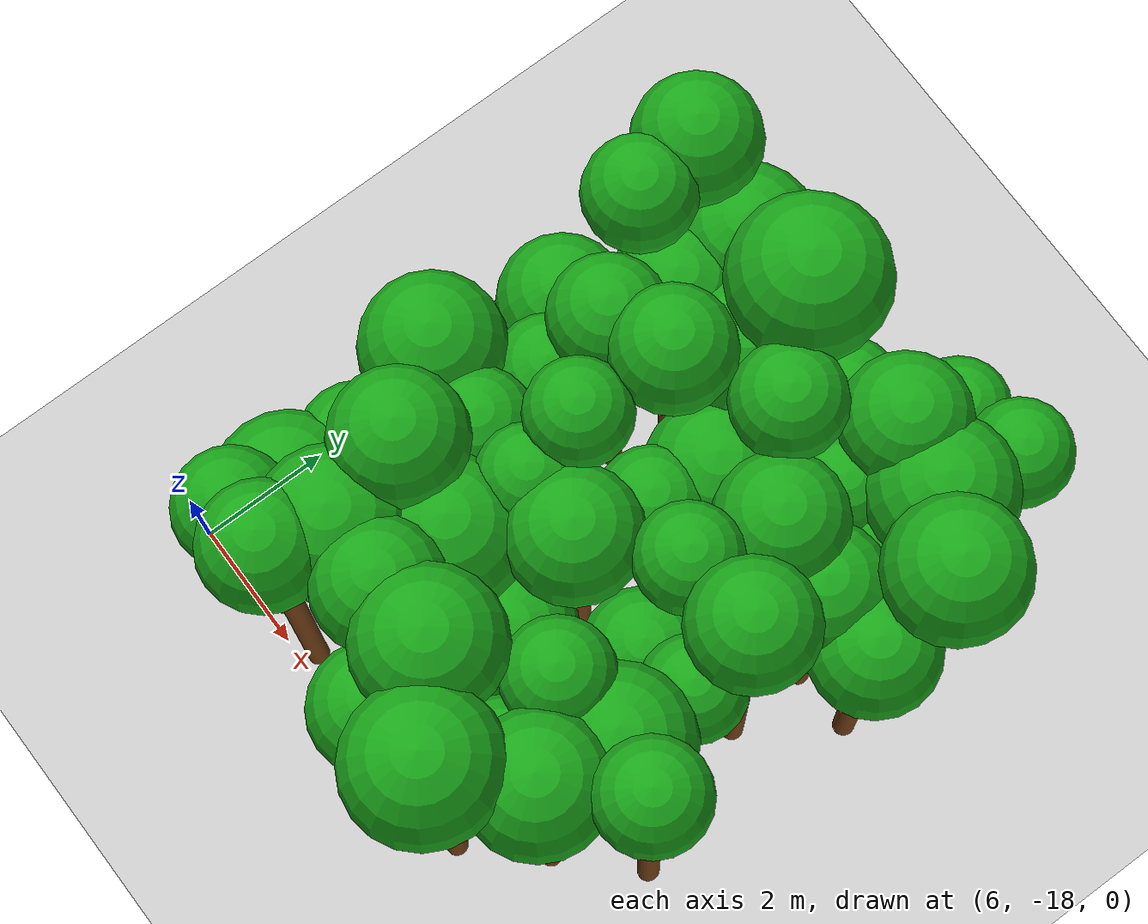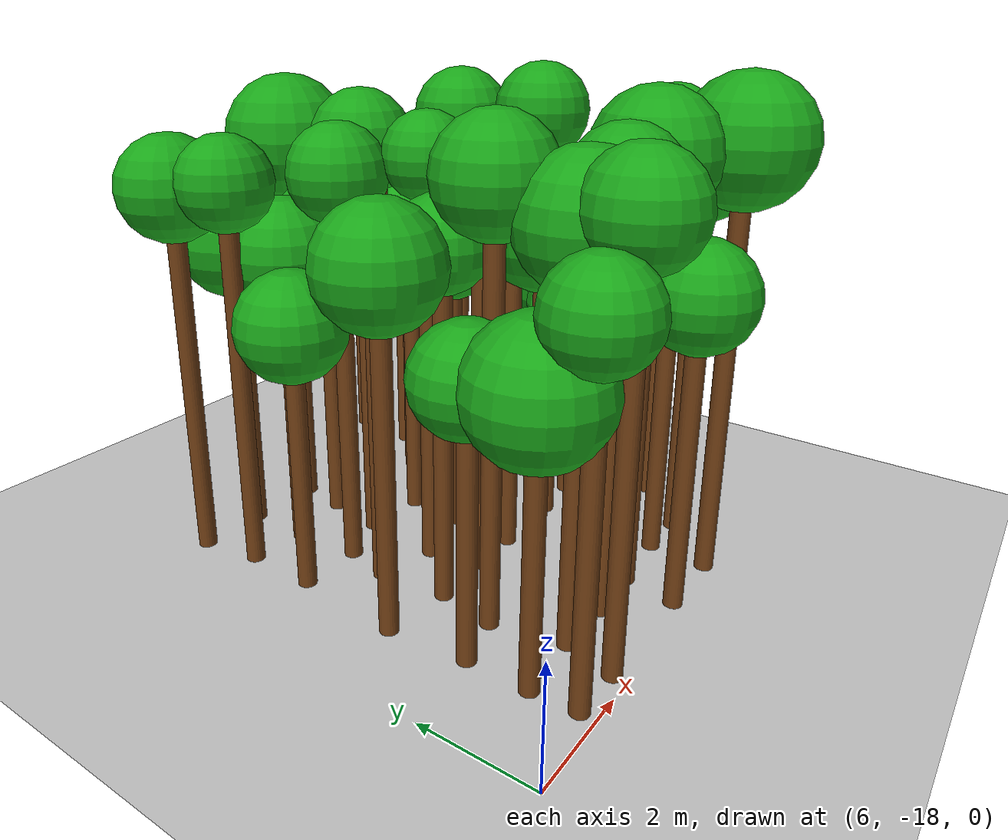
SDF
<sdf version="1.6">
 <world name="forest_world">
  <include><uri>model://sun</uri></include>
  <include><uri>model://ground_plane</uri></include>
  <model name="tree_1858_trunk">
   <static>true</static>
   <pose>7.50 -17.72 2.68 0 0 0</pose>
   <link name="link">
    <collision name="collision">
     <geometry><cylinder><radius>0.16</radius><length>5.35</length></cylinder></geometry>
    </collision>
    <visual name="visual">
     <geometry><cylinder><radius>0.16</radius><length>5.35</length></cylinder></geometry>
     <material><ambient>0.35 0.20 0.05 1</ambient><diffuse>0.45 0.25 0.08 1</diffuse></material>
    </visual>
   </link>
  </model>
  <model name="tree_1858_leaf">
   <static>true</static>
   <pose>7.50 -17.72 5.84 0 0 0</pose>
   <link name="link">
    <collision name="collision"><geometry><sphere><radius>0.81</radius></sphere></geometry></collision>
    <visual name="visual">
     <geometry><sphere><radius>0.81</radius></sphere></geometry>
     <material><ambient>0.05 0.45 0.05 1</ambient><diffuse>0.10 0.65 0.10 1</diffuse></material>
    </visual>
   </link>
  </model>
  <model name="tree_1859_trunk">
   <static>true</static>
   <pose>7.45 -16.93 2.02 0 0 0</pose>
   <link name="link">
    <collision name="collision">
     <geometry><cylinder><radius>0.16</radius><length>4.03</length></cylinder></geometry>
    </collision>
    <visual name="visual">
     <geometry><cylinder><radius>0.16</radius><length>4.03</length></cylinder></geometry>
     <material><ambient>0.35 0.20 0.05 1</ambient><diffuse>0.45 0.25 0.08 1</diffuse></material>
    </visual>
   </link>
  </model>
  <model name="tree_1859_leaf">
   <static>true</static>
   <pose>7.45 -16.93 4.68 0 0 0</pose>
   <link name="link">
    <collision name="collision"><geometry><sphere><radius>1.08</radius></sphere></geometry></collision>
    <visual name="visual">
     <geometry><sphere><radius>1.08</radius></sphere></geometry>
     <material><ambient>0.05 0.45 0.05 1</ambient><diffuse>0.10 0.65 0.10 1</diffuse></material>
    </visual>
   </link>
  </model>
  <model name="tree_1860_trunk">
   <static>true</static>
   <pose>7.45 -15.83 2.03 0 0 0</pose>
   <link name="link">
    <collision name="collision">
     <geometry><cylinder><radius>0.16</radius><length>4.06</length></cylinder></geometry>
    </collision>
    <visual name="visual">
     <geometry><cylinder><radius>0.16</radius><length>4.06</length></cylinder></geometry>
     <material><ambient>0.35 0.20 0.05 1</ambient><diffuse>0.45 0.25 0.08 1</diffuse></material>
    </visual>
   </link>
  </model>
  <model name="tree_1860_leaf">
   <static>true</static>
   <pose>7.45 -15.83 4.57 0 0 0</pose>
   <link name="link">
    <collision name="collision"><geometry><sphere><radius>0.86</radius></sphere></geometry></collision>
    <visual name="visual">
     <geometry><sphere><radius>0.86</radius></sphere></geometry>
     <material><ambient>0.05 0.45 0.05 1</ambient><diffuse>0.10 0.65 0.10 1</diffuse></material>
    </visual>
   </link>
  </model>
  <model name="tree_1861_trunk">
   <static>true</static>
   <pose>7.32 -14.43 2.67 0 0 0</pose>
   <link name="link">
    <collision name="collision">
     <geometry><cylinder><radius>0.16</radius><length>5.34</length></cylinder></geometry>
    </collision>
    <visual name="visual">
     <geometry><cylinder><radius>0.16</radius><length>5.34</length></cylinder></geometry>
     <material><ambient>0.35 0.20 0.05 1</ambient><diffuse>0.45 0.25 0.08 1</diffuse></material>
    </visual>
   </link>
  </model>
  <model name="tree_1861_leaf">
   <static>true</static>
   <pose>7.32 -14.43 5.93 0 0 0</pose>
   <link name="link">
    <collision name="collision"><geometry><sphere><radius>0.99</radius></sphere></geometry></collision>
    <visual name="visual">
     <geometry><sphere><radius>0.99</radius></sphere></geometry>
     <material><ambient>0.05 0.45 0.05 1</ambient><diffuse>0.10 0.65 0.10 1</diffuse></material>
    </visual>
   </link>
  </model>
  <model name="tree_1863_trunk">
   <static>true</static>
   <pose>7.48 -12.49 2.04 0 0 0</pose>
   <link name="link">
    <collision name="collision">
     <geometry><cylinder><radius>0.16</radius><length>4.09</length></cylinder></geometry>
    </collision>
    <visual name="visual">
     <geometry><cylinder><radius>0.16</radius><length>4.09</length></cylinder></geometry>
     <material><ambient>0.35 0.20 0.05 1</ambient><diffuse>0.45 0.25 0.08 1</diffuse></material>
    </visual>
   </link>
  </model>
  <model name="tree_1863_leaf">
   <static>true</static>
   <pose>7.48 -12.49 4.63 0 0 0</pose>
   <link name="link">
    <collision name="collision"><geometry><sphere><radius>0.91</radius></sphere></geometry></collision>
    <visual name="visual">
     <geometry><sphere><radius>0.91</radius></sphere></geometry>
     <material><ambient>0.05 0.45 0.05 1</ambient><diffuse>0.10 0.65 0.10 1</diffuse></material>
    </visual>
   </link>
  </model>
  <model name="tree_1864_trunk">
   <static>true</static>
   <pose>7.48 -11.21 3.11 0 0 0</pose>
   <link name="link">
    <collision name="collision">
     <geometry><cylinder><radius>0.16</radius><length>6.23</length></cylinder></geometry>
    </collision>
    <visual name="visual">
     <geometry><cylinder><radius>0.16</radius><length>6.23</length></cylinder></geometry>
     <material><ambient>0.35 0.20 0.05 1</ambient><diffuse>0.45 0.25 0.08 1</diffuse></material>
    </visual>
   </link>
  </model>
  <model name="tree_1864_leaf">
   <static>true</static>
   <pose>7.48 -11.21 6.70 0 0 0</pose>
   <link name="link">
    <collision name="collision"><geometry><sphere><radius>0.78</radius></sphere></geometry></collision>
    <visual name="visual">
     <geometry><sphere><radius>0.78</radius></sphere></geometry>
     <material><ambient>0.05 0.45 0.05 1</ambient><diffuse>0.10 0.65 0.10 1</diffuse></material>
    </visual>
   </link>
  </model>
  <model name="tree_1865_trunk">
   <static>true</static>
   <pose>7.29 -10.14 3.00 0 0 0</pose>
   <link name="link">
    <collision name="collision">
     <geometry><cylinder><radius>0.16</radius><length>6.01</length></cylinder></geometry>
    </collision>
    <visual name="visual">
     <geometry><cylinder><radius>0.16</radius><length>6.01</length></cylinder></geometry>
     <material><ambient>0.35 0.20 0.05 1</ambient><diffuse>0.45 0.25 0.08 1</diffuse></material>
    </visual>
   </link>
  </model>
  <model name="tree_1865_leaf">
   <static>true</static>
   <pose>7.29 -10.14 6.54 0 0 0</pose>
   <link name="link">
    <collision name="collision"><geometry><sphere><radius>0.89</radius></sphere></geometry></collision>
    <visual name="visual">
     <geometry><sphere><radius>0.89</radius></sphere></geometry>
     <material><ambient>0.05 0.45 0.05 1</ambient><diffuse>0.10 0.65 0.10 1</diffuse></material>
    </visual>
   </link>
  </model>
  <model name="tree_1913_trunk">
   <static>true</static>
   <pose>8.43 -17.75 3.21 0 0 0</pose>
   <link name="link">
    <collision name="collision">
     <geometry><cylinder><radius>0.16</radius><length>6.42</length></cylinder></geometry>
    </collision>
    <visual name="visual">
     <geometry><cylinder><radius>0.16</radius><length>6.42</length></cylinder></geometry>
     <material><ambient>0.35 0.20 0.05 1</ambient><diffuse>0.45 0.25 0.08 1</diffuse></material>
    </visual>
   </link>
  </model>
  <model name="tree_1913_leaf">
   <static>true</static>
   <pose>8.43 -17.75 6.94 0 0 0</pose>
   <link name="link">
    <collision name="collision"><geometry><sphere><radius>0.86</radius></sphere></geometry></collision>
    <visual name="visual">
     <geometry><sphere><radius>0.86</radius></sphere></geometry>
     <material><ambient>0.05 0.45 0.05 1</ambient><diffuse>0.10 0.65 0.10 1</diffuse></material>
    </visual>
   </link>
  </model>
  <model name="tree_1914_trunk">
   <static>true</static>
   <pose>8.65 -16.87 3.01 0 0 0</pose>
   <link name="link">
    <collision name="collision">
     <geometry><cylinder><radius>0.16</radius><length>6.02</length></cylinder></geometry>
    </collision>
    <visual name="visual">
     <geometry><cylinder><radius>0.16</radius><length>6.02</length></cylinder></geometry>
     <material><ambient>0.35 0.20 0.05 1</ambient><diffuse>0.45 0.25 0.08 1</diffuse></material>
    </visual>
   </link>
  </model>
  <model name="tree_1914_leaf">
   <static>true</static>
   <pose>8.65 -16.87 6.64 0 0 0</pose>
   <link name="link">
    <collision name="collision"><geometry><sphere><radius>1.03</radius></sphere></geometry></collision>
    <visual name="visual">
     <geometry><sphere><radius>1.03</radius></sphere></geometry>
     <material><ambient>0.05 0.45 0.05 1</ambient><diffuse>0.10 0.65 0.10 1</diffuse></material>
    </visual>
   </link>
  </model>
  <model name="tree_1915_trunk">
   <static>true</static>
   <pose>8.37 -15.62 3.30 0 0 0</pose>
   <link name="link">
    <collision name="collision">
     <geometry><cylinder><radius>0.16</radius><length>6.60</length></cylinder></geometry>
    </collision>
    <visual name="visual">
     <geometry><cylinder><radius>0.16</radius><length>6.60</length></cylinder></geometry>
     <material><ambient>0.35 0.20 0.05 1</ambient><diffuse>0.45 0.25 0.08 1</diffuse></material>
    </visual>
   </link>
  </model>
  <model name="tree_1915_leaf">
   <static>true</static>
   <pose>8.37 -15.62 7.15 0 0 0</pose>
   <link name="link">
    <collision name="collision"><geometry><sphere><radius>0.92</radius></sphere></geometry></collision>
    <visual name="visual">
     <geometry><sphere><radius>0.92</radius></sphere></geometry>
     <material><ambient>0.05 0.45 0.05 1</ambient><diffuse>0.10 0.65 0.10 1</diffuse></material>
    </visual>
   </link>
  </model>
  <model name="tree_1916_trunk">
   <static>true</static>
   <pose>8.55 -14.59 2.78 0 0 0</pose>
   <link name="link">
    <collision name="collision">
     <geometry><cylinder><radius>0.16</radius><length>5.57</length></cylinder></geometry>
    </collision>
    <visual name="visual">
     <geometry><cylinder><radius>0.16</radius><length>5.57</length></cylinder></geometry>
     <material><ambient>0.35 0.20 0.05 1</ambient><diffuse>0.45 0.25 0.08 1</diffuse></material>
    </visual>
   </link>
  </model>
  <model name="tree_1916_leaf">
   <static>true</static>
   <pose>8.55 -14.59 6.03 0 0 0</pose>
   <link name="link">
    <collision name="collision"><geometry><sphere><radius>0.77</radius></sphere></geometry></collision>
    <visual name="visual">
     <geometry><sphere><radius>0.77</radius></sphere></geometry>
     <material><ambient>0.05 0.45 0.05 1</ambient><diffuse>0.10 0.65 0.10 1</diffuse></material>
    </visual>
   </link>
  </model>
  <model name="tree_1917_trunk">
   <static>true</static>
   <pose>8.41 -13.37 2.50 0 0 0</pose>
   <link name="link">
    <collision name="collision">
     <geometry><cylinder><radius>0.16</radius><length>5.01</length></cylinder></geometry>
    </collision>
    <visual name="visual">
     <geometry><cylinder><radius>0.16</radius><length>5.01</length></cylinder></geometry>
     <material><ambient>0.35 0.20 0.05 1</ambient><diffuse>0.45 0.25 0.08 1</diffuse></material>
    </visual>
   </link>
  </model>
  <model name="tree_1917_leaf">
   <static>true</static>
   <pose>8.41 -13.37 5.49 0 0 0</pose>
   <link name="link">
    <collision name="collision"><geometry><sphere><radius>0.80</radius></sphere></geometry></collision>
    <visual name="visual">
     <geometry><sphere><radius>0.80</radius></sphere></geometry>
     <material><ambient>0.05 0.45 0.05 1</ambient><diffuse>0.10 0.65 0.10 1</diffuse></material>
    </visual>
   </link>
  </model>
  <model name="tree_1918_trunk">
   <static>true</static>
   <pose>8.59 -12.54 3.18 0 0 0</pose>
   <link name="link">
    <collision name="collision">
     <geometry><cylinder><radius>0.16</radius><length>6.35</length></cylinder></geometry>
    </collision>
    <visual name="visual">
     <geometry><cylinder><radius>0.16</radius><length>6.35</length></cylinder></geometry>
     <material><ambient>0.35 0.20 0.05 1</ambient><diffuse>0.45 0.25 0.08 1</diffuse></material>
    </visual>
   </link>
  </model>
  <model name="tree_1918_leaf">
   <static>true</static>
   <pose>8.59 -12.54 6.84 0 0 0</pose>
   <link name="link">
    <collision name="collision"><geometry><sphere><radius>0.81</radius></sphere></geometry></collision>
    <visual name="visual">
     <geometry><sphere><radius>0.81</radius></sphere></geometry>
     <material><ambient>0.05 0.45 0.05 1</ambient><diffuse>0.10 0.65 0.10 1</diffuse></material>
    </visual>
   </link>
  </model>
  <model name="tree_1919_trunk">
   <static>true</static>
   <pose>8.48 -11.36 2.43 0 0 0</pose>
   <link name="link">
    <collision name="collision">
     <geometry><cylinder><radius>0.16</radius><length>4.87</length></cylinder></geometry>
    </collision>
    <visual name="visual">
     <geometry><cylinder><radius>0.16</radius><length>4.87</length></cylinder></geometry>
     <material><ambient>0.35 0.20 0.05 1</ambient><diffuse>0.45 0.25 0.08 1</diffuse></material>
    </visual>
   </link>
  </model>
  <model name="tree_1919_leaf">
   <static>true</static>
   <pose>8.48 -11.36 5.43 0 0 0</pose>
   <link name="link">
    <collision name="collision"><geometry><sphere><radius>0.94</radius></sphere></geometry></collision>
    <visual name="visual">
     <geometry><sphere><radius>0.94</radius></sphere></geometry>
     <material><ambient>0.05 0.45 0.05 1</ambient><diffuse>0.10 0.65 0.10 1</diffuse></material>
    </visual>
   </link>
  </model>
  <model name="tree_1920_trunk">
   <static>true</static>
   <pose>8.46 -10.20 2.43 0 0 0</pose>
   <link name="link">
    <collision name="collision">
     <geometry><cylinder><radius>0.16</radius><length>4.86</length></cylinder></geometry>
    </collision>
    <visual name="visual">
     <geometry><cylinder><radius>0.16</radius><length>4.86</length></cylinder></geometry>
     <material><ambient>0.35 0.20 0.05 1</ambient><diffuse>0.45 0.25 0.08 1</diffuse></material>
    </visual>
   </link>
  </model>
  <model name="tree_1920_leaf">
   <static>true</static>
   <pose>8.46 -10.20 5.48 0 0 0</pose>
   <link name="link">
    <collision name="collision"><geometry><sphere><radius>1.02</radius></sphere></geometry></collision>
    <visual name="visual">
     <geometry><sphere><radius>1.02</radius></sphere></geometry>
     <material><ambient>0.05 0.45 0.05 1</ambient><diffuse>0.10 0.65 0.10 1</diffuse></material>
    </visual>
   </link>
  </model>
  <model name="tree_1969_trunk">
   <static>true</static>
   <pose>9.70 -16.89 3.21 0 0 0</pose>
   <link name="link">
    <collision name="collision">
     <geometry><cylinder><radius>0.16</radius><length>6.43</length></cylinder></geometry>
    </collision>
    <visual name="visual">
     <geometry><cylinder><radius>0.16</radius><length>6.43</length></cylinder></geometry>
     <material><ambient>0.35 0.20 0.05 1</ambient><diffuse>0.45 0.25 0.08 1</diffuse></material>
    </visual>
   </link>
  </model>
  <model name="tree_1969_leaf">
   <static>true</static>
   <pose>9.70 -16.89 6.96 0 0 0</pose>
   <link name="link">
    <collision name="collision"><geometry><sphere><radius>0.89</radius></sphere></geometry></collision>
    <visual name="visual">
     <geometry><sphere><radius>0.89</radius></sphere></geometry>
     <material><ambient>0.05 0.45 0.05 1</ambient><diffuse>0.10 0.65 0.10 1</diffuse></material>
    </visual>
   </link>
  </model>
  <model name="tree_1970_trunk">
   <static>true</static>
   <pose>9.54 -15.74 2.85 0 0 0</pose>
   <link name="link">
    <collision name="collision">
     <geometry><cylinder><radius>0.16</radius><length>5.69</length></cylinder></geometry>
    </collision>
    <visual name="visual">
     <geometry><cylinder><radius>0.16</radius><length>5.69</length></cylinder></geometry>
     <material><ambient>0.35 0.20 0.05 1</ambient><diffuse>0.45 0.25 0.08 1</diffuse></material>
    </visual>
   </link>
  </model>
  <model name="tree_1970_leaf">
   <static>true</static>
   <pose>9.54 -15.74 6.30 0 0 0</pose>
   <link name="link">
    <collision name="collision"><geometry><sphere><radius>1.02</radius></sphere></geometry></collision>
    <visual name="visual">
     <geometry><sphere><radius>1.02</radius></sphere></geometry>
     <material><ambient>0.05 0.45 0.05 1</ambient><diffuse>0.10 0.65 0.10 1</diffuse></material>
    </visual>
   </link>
  </model>
  <model name="tree_1971_trunk">
   <static>true</static>
   <pose>9.62 -14.56 3.09 0 0 0</pose>
   <link name="link">
    <collision name="collision">
     <geometry><cylinder><radius>0.16</radius><length>6.17</length></cylinder></geometry>
    </collision>
    <visual name="visual">
     <geometry><cylinder><radius>0.16</radius><length>6.17</length></cylinder></geometry>
     <material><ambient>0.35 0.20 0.05 1</ambient><diffuse>0.45 0.25 0.08 1</diffuse></material>
    </visual>
   </link>
  </model>
  <model name="tree_1971_leaf">
   <static>true</static>
   <pose>9.62 -14.56 6.59 0 0 0</pose>
   <link name="link">
    <collision name="collision"><geometry><sphere><radius>0.71</radius></sphere></geometry></collision>
    <visual name="visual">
     <geometry><sphere><radius>0.71</radius></sphere></geometry>
     <material><ambient>0.05 0.45 0.05 1</ambient><diffuse>0.10 0.65 0.10 1</diffuse></material>
    </visual>
   </link>
  </model>
  <model name="tree_1972_trunk">
   <static>true</static>
   <pose>9.44 -13.64 3.33 0 0 0</pose>
   <link name="link">
    <collision name="collision">
     <geometry><cylinder><radius>0.16</radius><length>6.67</length></cylinder></geometry>
    </collision>
    <visual name="visual">
     <geometry><cylinder><radius>0.16</radius><length>6.67</length></cylinder></geometry>
     <material><ambient>0.35 0.20 0.05 1</ambient><diffuse>0.45 0.25 0.08 1</diffuse></material>
    </visual>
   </link>
  </model>
  <model name="tree_1972_leaf">
   <static>true</static>
   <pose>9.44 -13.64 7.10 0 0 0</pose>
   <link name="link">
    <collision name="collision"><geometry><sphere><radius>0.72</radius></sphere></geometry></collision>
    <visual name="visual">
     <geometry><sphere><radius>0.72</radius></sphere></geometry>
     <material><ambient>0.05 0.45 0.05 1</ambient><diffuse>0.10 0.65 0.10 1</diffuse></material>
    </visual>
   </link>
  </model>
  <model name="tree_1973_trunk">
   <static>true</static>
   <pose>9.52 -12.23 3.37 0 0 0</pose>
   <link name="link">
    <collision name="collision">
     <geometry><cylinder><radius>0.16</radius><length>6.73</length></cylinder></geometry>
    </collision>
    <visual name="visual">
     <geometry><cylinder><radius>0.16</radius><length>6.73</length></cylinder></geometry>
     <material><ambient>0.35 0.20 0.05 1</ambient><diffuse>0.45 0.25 0.08 1</diffuse></material>
    </visual>
   </link>
  </model>
  <model name="tree_1973_leaf">
   <static>true</static>
   <pose>9.52 -12.23 7.23 0 0 0</pose>
   <link name="link">
    <collision name="collision"><geometry><sphere><radius>0.84</radius></sphere></geometry></collision>
    <visual name="visual">
     <geometry><sphere><radius>0.84</radius></sphere></geometry>
     <material><ambient>0.05 0.45 0.05 1</ambient><diffuse>0.10 0.65 0.10 1</diffuse></material>
    </visual>
   </link>
  </model>
  <model name="tree_1974_trunk">
   <static>true</static>
   <pose>9.67 -11.16 2.52 0 0 0</pose>
   <link name="link">
    <collision name="collision">
     <geometry><cylinder><radius>0.16</radius><length>5.05</length></cylinder></geometry>
    </collision>
    <visual name="visual">
     <geometry><cylinder><radius>0.16</radius><length>5.05</length></cylinder></geometry>
     <material><ambient>0.35 0.20 0.05 1</ambient><diffuse>0.45 0.25 0.08 1</diffuse></material>
    </visual>
   </link>
  </model>
  <model name="tree_1974_leaf">
   <static>true</static>
   <pose>9.67 -11.16 5.60 0 0 0</pose>
   <link name="link">
    <collision name="collision"><geometry><sphere><radius>0.92</radius></sphere></geometry></collision>
    <visual name="visual">
     <geometry><sphere><radius>0.92</radius></sphere></geometry>
     <material><ambient>0.05 0.45 0.05 1</ambient><diffuse>0.10 0.65 0.10 1</diffuse></material>
    </visual>
   </link>
  </model>
  <model name="tree_1975_trunk">
   <static>true</static>
   <pose>9.77 -10.27 3.22 0 0 0</pose>
   <link name="link">
    <collision name="collision">
     <geometry><cylinder><radius>0.16</radius><length>6.44</length></cylinder></geometry>
    </collision>
    <visual name="visual">
     <geometry><cylinder><radius>0.16</radius><length>6.44</length></cylinder></geometry>
     <material><ambient>0.35 0.20 0.05 1</ambient><diffuse>0.45 0.25 0.08 1</diffuse></material>
    </visual>
   </link>
  </model>
  <model name="tree_1975_leaf">
   <static>true</static>
   <pose>9.77 -10.27 7.10 0 0 0</pose>
   <link name="link">
    <collision name="collision"><geometry><sphere><radius>1.10</radius></sphere></geometry></collision>
    <visual name="visual">
     <geometry><sphere><radius>1.10</radius></sphere></geometry>
     <material><ambient>0.05 0.45 0.05 1</ambient><diffuse>0.10 0.65 0.10 1</diffuse></material>
    </visual>
   </link>
  </model>
  <model name="tree_2023_trunk">
   <static>true</static>
   <pose>10.58 -17.77 2.38 0 0 0</pose>
   <link name="link">
    <collision name="collision">
     <geometry><cylinder><radius>0.16</radius><length>4.76</length></cylinder></geometry>
    </collision>
    <visual name="visual">
     <geometry><cylinder><radius>0.16</radius><length>4.76</length></cylinder></geometry>
     <material><ambient>0.35 0.20 0.05 1</ambient><diffuse>0.45 0.25 0.08 1</diffuse></material>
    </visual>
   </link>
  </model>
  <model name="tree_2023_leaf">
   <static>true</static>
   <pose>10.58 -17.77 5.29 0 0 0</pose>
   <link name="link">
    <collision name="collision"><geometry><sphere><radius>0.89</radius></sphere></geometry></collision>
    <visual name="visual">
     <geometry><sphere><radius>0.89</radius></sphere></geometry>
     <material><ambient>0.05 0.45 0.05 1</ambient><diffuse>0.10 0.65 0.10 1</diffuse></material>
    </visual>
   </link>
  </model>
  <model name="tree_2024_trunk">
   <static>true</static>
   <pose>10.71 -16.85 3.33 0 0 0</pose>
   <link name="link">
    <collision name="collision">
     <geometry><cylinder><radius>0.16</radius><length>6.65</length></cylinder></geometry>
    </collision>
    <visual name="visual">
     <geometry><cylinder><radius>0.16</radius><length>6.65</length></cylinder></geometry>
     <material><ambient>0.35 0.20 0.05 1</ambient><diffuse>0.45 0.25 0.08 1</diffuse></material>
    </visual>
   </link>
  </model>
  <model name="tree_2024_leaf">
   <static>true</static>
   <pose>10.71 -16.85 7.26 0 0 0</pose>
   <link name="link">
    <collision name="collision"><geometry><sphere><radius>1.01</radius></sphere></geometry></collision>
    <visual name="visual">
     <geometry><sphere><radius>1.01</radius></sphere></geometry>
     <material><ambient>0.05 0.45 0.05 1</ambient><diffuse>0.10 0.65 0.10 1</diffuse></material>
    </visual>
   </link>
  </model>
  <model name="tree_2025_trunk">
   <static>true</static>
   <pose>10.76 -15.77 2.12 0 0 0</pose>
   <link name="link">
    <collision name="collision">
     <geometry><cylinder><radius>0.16</radius><length>4.25</length></cylinder></geometry>
    </collision>
    <visual name="visual">
     <geometry><cylinder><radius>0.16</radius><length>4.25</length></cylinder></geometry>
     <material><ambient>0.35 0.20 0.05 1</ambient><diffuse>0.45 0.25 0.08 1</diffuse></material>
    </visual>
   </link>
  </model>
  <model name="tree_2025_leaf">
   <static>true</static>
   <pose>10.76 -15.77 4.80 0 0 0</pose>
   <link name="link">
    <collision name="collision"><geometry><sphere><radius>0.92</radius></sphere></geometry></collision>
    <visual name="visual">
     <geometry><sphere><radius>0.92</radius></sphere></geometry>
     <material><ambient>0.05 0.45 0.05 1</ambient><diffuse>0.10 0.65 0.10 1</diffuse></material>
    </visual>
   </link>
  </model>
  <model name="tree_2026_trunk">
   <static>true</static>
   <pose>10.55 -14.55 3.02 0 0 0</pose>
   <link name="link">
    <collision name="collision">
     <geometry><cylinder><radius>0.16</radius><length>6.03</length></cylinder></geometry>
    </collision>
    <visual name="visual">
     <geometry><cylinder><radius>0.16</radius><length>6.03</length></cylinder></geometry>
     <material><ambient>0.35 0.20 0.05 1</ambient><diffuse>0.45 0.25 0.08 1</diffuse></material>
    </visual>
   </link>
  </model>
  <model name="tree_2026_leaf">
   <static>true</static>
   <pose>10.55 -14.55 6.59 0 0 0</pose>
   <link name="link">
    <collision name="collision"><geometry><sphere><radius>0.92</radius></sphere></geometry></collision>
    <visual name="visual">
     <geometry><sphere><radius>0.92</radius></sphere></geometry>
     <material><ambient>0.05 0.45 0.05 1</ambient><diffuse>0.10 0.65 0.10 1</diffuse></material>
    </visual>
   </link>
  </model>
  <model name="tree_2027_trunk">
   <static>true</static>
   <pose>10.55 -13.32 2.38 0 0 0</pose>
   <link name="link">
    <collision name="collision">
     <geometry><cylinder><radius>0.16</radius><length>4.77</length></cylinder></geometry>
    </collision>
    <visual name="visual">
     <geometry><cylinder><radius>0.16</radius><length>4.77</length></cylinder></geometry>
     <material><ambient>0.35 0.20 0.05 1</ambient><diffuse>0.45 0.25 0.08 1</diffuse></material>
    </visual>
   </link>
  </model>
  <model name="tree_2027_leaf">
   <static>true</static>
   <pose>10.55 -13.32 5.23 0 0 0</pose>
   <link name="link">
    <collision name="collision"><geometry><sphere><radius>0.77</radius></sphere></geometry></collision>
    <visual name="visual">
     <geometry><sphere><radius>0.77</radius></sphere></geometry>
     <material><ambient>0.05 0.45 0.05 1</ambient><diffuse>0.10 0.65 0.10 1</diffuse></material>
    </visual>
   </link>
  </model>
  <model name="tree_2028_trunk">
   <static>true</static>
   <pose>10.65 -12.32 2.15 0 0 0</pose>
   <link name="link">
    <collision name="collision">
     <geometry><cylinder><radius>0.16</radius><length>4.31</length></cylinder></geometry>
    </collision>
    <visual name="visual">
     <geometry><cylinder><radius>0.16</radius><length>4.31</length></cylinder></geometry>
     <material><ambient>0.35 0.20 0.05 1</ambient><diffuse>0.45 0.25 0.08 1</diffuse></material>
    </visual>
   </link>
  </model>
  <model name="tree_2028_leaf">
   <static>true</static>
   <pose>10.65 -12.32 4.91 0 0 0</pose>
   <link name="link">
    <collision name="collision"><geometry><sphere><radius>1.00</radius></sphere></geometry></collision>
    <visual name="visual">
     <geometry><sphere><radius>1.00</radius></sphere></geometry>
     <material><ambient>0.05 0.45 0.05 1</ambient><diffuse>0.10 0.65 0.10 1</diffuse></material>
    </visual>
   </link>
  </model>
  <model name="tree_2029_trunk">
   <static>true</static>
   <pose>10.85 -11.42 3.22 0 0 0</pose>
   <link name="link">
    <collision name="collision">
     <geometry><cylinder><radius>0.16</radius><length>6.44</length></cylinder></geometry>
    </collision>
    <visual name="visual">
     <geometry><cylinder><radius>0.16</radius><length>6.44</length></cylinder></geometry>
     <material><ambient>0.35 0.20 0.05 1</ambient><diffuse>0.45 0.25 0.08 1</diffuse></material>
    </visual>
   </link>
  </model>
  <model name="tree_2029_leaf">
   <static>true</static>
   <pose>10.85 -11.42 6.91 0 0 0</pose>
   <link name="link">
    <collision name="collision"><geometry><sphere><radius>0.78</radius></sphere></geometry></collision>
    <visual name="visual">
     <geometry><sphere><radius>0.78</radius></sphere></geometry>
     <material><ambient>0.05 0.45 0.05 1</ambient><diffuse>0.10 0.65 0.10 1</diffuse></material>
    </visual>
   </link>
  </model>
  <model name="tree_2030_trunk">
   <static>true</static>
   <pose>10.79 -10.31 2.08 0 0 0</pose>
   <link name="link">
    <collision name="collision">
     <geometry><cylinder><radius>0.16</radius><length>4.17</length></cylinder></geometry>
    </collision>
    <visual name="visual">
     <geometry><cylinder><radius>0.16</radius><length>4.17</length></cylinder></geometry>
     <material><ambient>0.35 0.20 0.05 1</ambient><diffuse>0.45 0.25 0.08 1</diffuse></material>
    </visual>
   </link>
  </model>
  <model name="tree_2030_leaf">
   <static>true</static>
   <pose>10.79 -10.31 4.66 0 0 0</pose>
   <link name="link">
    <collision name="collision"><geometry><sphere><radius>0.82</radius></sphere></geometry></collision>
    <visual name="visual">
     <geometry><sphere><radius>0.82</radius></sphere></geometry>
     <material><ambient>0.05 0.45 0.05 1</ambient><diffuse>0.10 0.65 0.10 1</diffuse></material>
    </visual>
   </link>
  </model>
  <model name="tree_2078_trunk">
   <static>true</static>
   <pose>11.89 -17.78 3.37 0 0 0</pose>
   <link name="link">
    <collision name="collision">
     <geometry><cylinder><radius>0.16</radius><length>6.74</length></cylinder></geometry>
    </collision>
    <visual name="visual">
     <geometry><cylinder><radius>0.16</radius><length>6.74</length></cylinder></geometry>
     <material><ambient>0.35 0.20 0.05 1</ambient><diffuse>0.45 0.25 0.08 1</diffuse></material>
    </visual>
   </link>
  </model>
  <model name="tree_2078_leaf">
   <static>true</static>
   <pose>11.89 -17.78 7.38 0 0 0</pose>
   <link name="link">
    <collision name="collision"><geometry><sphere><radius>1.06</radius></sphere></geometry></collision>
    <visual name="visual">
     <geometry><sphere><radius>1.06</radius></sphere></geometry>
     <material><ambient>0.05 0.45 0.05 1</ambient><diffuse>0.10 0.65 0.10 1</diffuse></material>
    </visual>
   </link>
  </model>
  <model name="tree_2079_trunk">
   <static>true</static>
   <pose>11.94 -16.76 2.32 0 0 0</pose>
   <link name="link">
    <collision name="collision">
     <geometry><cylinder><radius>0.16</radius><length>4.64</length></cylinder></geometry>
    </collision>
    <visual name="visual">
     <geometry><cylinder><radius>0.16</radius><length>4.64</length></cylinder></geometry>
     <material><ambient>0.35 0.20 0.05 1</ambient><diffuse>0.45 0.25 0.08 1</diffuse></material>
    </visual>
   </link>
  </model>
  <model name="tree_2079_leaf">
   <static>true</static>
   <pose>11.94 -16.76 5.06 0 0 0</pose>
   <link name="link">
    <collision name="collision"><geometry><sphere><radius>0.70</radius></sphere></geometry></collision>
    <visual name="visual">
     <geometry><sphere><radius>0.70</radius></sphere></geometry>
     <material><ambient>0.05 0.45 0.05 1</ambient><diffuse>0.10 0.65 0.10 1</diffuse></material>
    </visual>
   </link>
  </model>
  <model name="tree_2080_trunk">
   <static>true</static>
   <pose>11.88 -15.78 3.16 0 0 0</pose>
   <link name="link">
    <collision name="collision">
     <geometry><cylinder><radius>0.16</radius><length>6.32</length></cylinder></geometry>
    </collision>
    <visual name="visual">
     <geometry><cylinder><radius>0.16</radius><length>6.32</length></cylinder></geometry>
     <material><ambient>0.35 0.20 0.05 1</ambient><diffuse>0.45 0.25 0.08 1</diffuse></material>
    </visual>
   </link>
  </model>
  <model name="tree_2080_leaf">
   <static>true</static>
   <pose>11.88 -15.78 6.77 0 0 0</pose>
   <link name="link">
    <collision name="collision"><geometry><sphere><radius>0.75</radius></sphere></geometry></collision>
    <visual name="visual">
     <geometry><sphere><radius>0.75</radius></sphere></geometry>
     <material><ambient>0.05 0.45 0.05 1</ambient><diffuse>0.10 0.65 0.10 1</diffuse></material>
    </visual>
   </link>
  </model>
  <model name="tree_2081_trunk">
   <static>true</static>
   <pose>11.97 -14.51 2.10 0 0 0</pose>
   <link name="link">
    <collision name="collision">
     <geometry><cylinder><radius>0.16</radius><length>4.21</length></cylinder></geometry>
    </collision>
    <visual name="visual">
     <geometry><cylinder><radius>0.16</radius><length>4.21</length></cylinder></geometry>
     <material><ambient>0.35 0.20 0.05 1</ambient><diffuse>0.45 0.25 0.08 1</diffuse></material>
    </visual>
   </link>
  </model>
  <model name="tree_2081_leaf">
   <static>true</static>
   <pose>11.97 -14.51 4.72 0 0 0</pose>
   <link name="link">
    <collision name="collision"><geometry><sphere><radius>0.86</radius></sphere></geometry></collision>
    <visual name="visual">
     <geometry><sphere><radius>0.86</radius></sphere></geometry>
     <material><ambient>0.05 0.45 0.05 1</ambient><diffuse>0.10 0.65 0.10 1</diffuse></material>
    </visual>
   </link>
  </model>
  <model name="tree_2082_trunk">
   <static>true</static>
   <pose>11.69 -13.62 3.19 0 0 0</pose>
   <link name="link">
    <collision name="collision">
     <geometry><cylinder><radius>0.16</radius><length>6.38</length></cylinder></geometry>
    </collision>
    <visual name="visual">
     <geometry><cylinder><radius>0.16</radius><length>6.38</length></cylinder></geometry>
     <material><ambient>0.35 0.20 0.05 1</ambient><diffuse>0.45 0.25 0.08 1</diffuse></material>
    </visual>
   </link>
  </model>
  <model name="tree_2082_leaf">
   <static>true</static>
   <pose>11.69 -13.62 6.82 0 0 0</pose>
   <link name="link">
    <collision name="collision"><geometry><sphere><radius>0.73</radius></sphere></geometry></collision>
    <visual name="visual">
     <geometry><sphere><radius>0.73</radius></sphere></geometry>
     <material><ambient>0.05 0.45 0.05 1</ambient><diffuse>0.10 0.65 0.10 1</diffuse></material>
    </visual>
   </link>
  </model>
  <model name="tree_2083_trunk">
   <static>true</static>
   <pose>11.93 -12.34 2.94 0 0 0</pose>
   <link name="link">
    <collision name="collision">
     <geometry><cylinder><radius>0.16</radius><length>5.88</length></cylinder></geometry>
    </collision>
    <visual name="visual">
     <geometry><cylinder><radius>0.16</radius><length>5.88</length></cylinder></geometry>
     <material><ambient>0.35 0.20 0.05 1</ambient><diffuse>0.45 0.25 0.08 1</diffuse></material>
    </visual>
   </link>
  </model>
  <model name="tree_2083_leaf">
   <static>true</static>
   <pose>11.93 -12.34 6.41 0 0 0</pose>
   <link name="link">
    <collision name="collision"><geometry><sphere><radius>0.90</radius></sphere></geometry></collision>
    <visual name="visual">
     <geometry><sphere><radius>0.90</radius></sphere></geometry>
     <material><ambient>0.05 0.45 0.05 1</ambient><diffuse>0.10 0.65 0.10 1</diffuse></material>
    </visual>
   </link>
  </model>
  <model name="tree_2084_trunk">
   <static>true</static>
   <pose>11.91 -11.26 2.54 0 0 0</pose>
   <link name="link">
    <collision name="collision">
     <geometry><cylinder><radius>0.16</radius><length>5.08</length></cylinder></geometry>
    </collision>
    <visual name="visual">
     <geometry><cylinder><radius>0.16</radius><length>5.08</length></cylinder></geometry>
     <material><ambient>0.35 0.20 0.05 1</ambient><diffuse>0.45 0.25 0.08 1</diffuse></material>
    </visual>
   </link>
  </model>
  <model name="tree_2084_leaf">
   <static>true</static>
   <pose>11.91 -11.26 5.51 0 0 0</pose>
   <link name="link">
    <collision name="collision"><geometry><sphere><radius>0.71</radius></sphere></geometry></collision>
    <visual name="visual">
     <geometry><sphere><radius>0.71</radius></sphere></geometry>
     <material><ambient>0.05 0.45 0.05 1</ambient><diffuse>0.10 0.65 0.10 1</diffuse></material>
    </visual>
   </link>
  </model>
  <model name="tree_2085_trunk">
   <static>true</static>
   <pose>11.80 -10.22 2.79 0 0 0</pose>
   <link name="link">
    <collision name="collision">
     <geometry><cylinder><radius>0.16</radius><length>5.59</length></cylinder></geometry>
    </collision>
    <visual name="visual">
     <geometry><cylinder><radius>0.16</radius><length>5.59</length></cylinder></geometry>
     <material><ambient>0.35 0.20 0.05 1</ambient><diffuse>0.45 0.25 0.08 1</diffuse></material>
    </visual>
   </link>
  </model>
  <model name="tree_2085_leaf">
   <static>true</static>
   <pose>11.80 -10.22 6.13 0 0 0</pose>
   <link name="link">
    <collision name="collision"><geometry><sphere><radius>0.90</radius></sphere></geometry></collision>
    <visual name="visual">
     <geometry><sphere><radius>0.90</radius></sphere></geometry>
     <material><ambient>0.05 0.45 0.05 1</ambient><diffuse>0.10 0.65 0.10 1</diffuse></material>
    </visual>
   </link>
  </model>
  <model name="tree_2086_trunk">
   <static>true</static>
   <pose>11.85 -9.18 2.04 0 0 0</pose>
   <link name="link">
    <collision name="collision">
     <geometry><cylinder><radius>0.16</radius><length>4.08</length></cylinder></geometry>
    </collision>
    <visual name="visual">
     <geometry><cylinder><radius>0.16</radius><length>4.08</length></cylinder></geometry>
     <material><ambient>0.35 0.20 0.05 1</ambient><diffuse>0.45 0.25 0.08 1</diffuse></material>
    </visual>
   </link>
  </model>
  <model name="tree_2086_leaf">
   <static>true</static>
   <pose>11.85 -9.18 4.53 0 0 0</pose>
   <link name="link">
    <collision name="collision"><geometry><sphere><radius>0.73</radius></sphere></geometry></collision>
    <visual name="visual">
     <geometry><sphere><radius>0.73</radius></sphere></geometry>
     <material><ambient>0.05 0.45 0.05 1</ambient><diffuse>0.10 0.65 0.10 1</diffuse></material>
    </visual>
   </link>
  </model>
  <model name="tree_2134_trunk">
   <static>true</static>
   <pose>12.83 -16.79 3.12 0 0 0</pose>
   <link name="link">
    <collision name="collision">
     <geometry><cylinder><radius>0.16</radius><length>6.24</length></cylinder></geometry>
    </collision>
    <visual name="visual">
     <geometry><cylinder><radius>0.16</radius><length>6.24</length></cylinder></geometry>
     <material><ambient>0.35 0.20 0.05 1</ambient><diffuse>0.45 0.25 0.08 1</diffuse></material>
    </visual>
   </link>
  </model>
  <model name="tree_2134_leaf">
   <static>true</static>
   <pose>12.83 -16.79 6.83 0 0 0</pose>
   <link name="link">
    <collision name="collision"><geometry><sphere><radius>0.97</radius></sphere></geometry></collision>
    <visual name="visual">
     <geometry><sphere><radius>0.97</radius></sphere></geometry>
     <material><ambient>0.05 0.45 0.05 1</ambient><diffuse>0.10 0.65 0.10 1</diffuse></material>
    </visual>
   </link>
  </model>
  <model name="tree_2135_trunk">
   <static>true</static>
   <pose>12.91 -15.64 2.79 0 0 0</pose>
   <link name="link">
    <collision name="collision">
     <geometry><cylinder><radius>0.16</radius><length>5.58</length></cylinder></geometry>
    </collision>
    <visual name="visual">
     <geometry><cylinder><radius>0.16</radius><length>5.58</length></cylinder></geometry>
     <material><ambient>0.35 0.20 0.05 1</ambient><diffuse>0.45 0.25 0.08 1</diffuse></material>
    </visual>
   </link>
  </model>
  <model name="tree_2135_leaf">
   <static>true</static>
   <pose>12.91 -15.64 6.20 0 0 0</pose>
   <link name="link">
    <collision name="collision"><geometry><sphere><radius>1.03</radius></sphere></geometry></collision>
    <visual name="visual">
     <geometry><sphere><radius>1.03</radius></sphere></geometry>
     <material><ambient>0.05 0.45 0.05 1</ambient><diffuse>0.10 0.65 0.10 1</diffuse></material>
    </visual>
   </link>
  </model>
  <model name="tree_2136_trunk">
   <static>true</static>
   <pose>12.89 -14.44 2.68 0 0 0</pose>
   <link name="link">
    <collision name="collision">
     <geometry><cylinder><radius>0.16</radius><length>5.36</length></cylinder></geometry>
    </collision>
    <visual name="visual">
     <geometry><cylinder><radius>0.16</radius><length>5.36</length></cylinder></geometry>
     <material><ambient>0.35 0.20 0.05 1</ambient><diffuse>0.45 0.25 0.08 1</diffuse></material>
    </visual>
   </link>
  </model>
  <model name="tree_2136_leaf">
   <static>true</static>
   <pose>12.89 -14.44 5.79 0 0 0</pose>
   <link name="link">
    <collision name="collision"><geometry><sphere><radius>0.72</radius></sphere></geometry></collision>
    <visual name="visual">
     <geometry><sphere><radius>0.72</radius></sphere></geometry>
     <material><ambient>0.05 0.45 0.05 1</ambient><diffuse>0.10 0.65 0.10 1</diffuse></material>
    </visual>
   </link>
  </model>
  <model name="tree_2137_trunk">
   <static>true</static>
   <pose>12.93 -13.61 3.49 0 0 0</pose>
   <link name="link">
    <collision name="collision">
     <geometry><cylinder><radius>0.16</radius><length>6.98</length></cylinder></geometry>
    </collision>
    <visual name="visual">
     <geometry><cylinder><radius>0.16</radius><length>6.98</length></cylinder></geometry>
     <material><ambient>0.35 0.20 0.05 1</ambient><diffuse>0.45 0.25 0.08 1</diffuse></material>
    </visual>
   </link>
  </model>
  <model name="tree_2137_leaf">
   <static>true</static>
   <pose>12.93 -13.61 7.50 0 0 0</pose>
   <link name="link">
    <collision name="collision"><geometry><sphere><radius>0.87</radius></sphere></geometry></collision>
    <visual name="visual">
     <geometry><sphere><radius>0.87</radius></sphere></geometry>
     <material><ambient>0.05 0.45 0.05 1</ambient><diffuse>0.10 0.65 0.10 1</diffuse></material>
    </visual>
   </link>
  </model>
  <model name="tree_2138_trunk">
   <static>true</static>
   <pose>12.86 -12.35 2.63 0 0 0</pose>
   <link name="link">
    <collision name="collision">
     <geometry><cylinder><radius>0.16</radius><length>5.25</length></cylinder></geometry>
    </collision>
    <visual name="visual">
     <geometry><cylinder><radius>0.16</radius><length>5.25</length></cylinder></geometry>
     <material><ambient>0.35 0.20 0.05 1</ambient><diffuse>0.45 0.25 0.08 1</diffuse></material>
    </visual>
   </link>
  </model>
  <model name="tree_2138_leaf">
   <static>true</static>
   <pose>12.86 -12.35 5.80 0 0 0</pose>
   <link name="link">
    <collision name="collision"><geometry><sphere><radius>0.91</radius></sphere></geometry></collision>
    <visual name="visual">
     <geometry><sphere><radius>0.91</radius></sphere></geometry>
     <material><ambient>0.05 0.45 0.05 1</ambient><diffuse>0.10 0.65 0.10 1</diffuse></material>
    </visual>
   </link>
  </model>
  <model name="tree_2139_trunk">
   <static>true</static>
   <pose>12.78 -11.13 2.21 0 0 0</pose>
   <link name="link">
    <collision name="collision">
     <geometry><cylinder><radius>0.16</radius><length>4.41</length></cylinder></geometry>
    </collision>
    <visual name="visual">
     <geometry><cylinder><radius>0.16</radius><length>4.41</length></cylinder></geometry>
     <material><ambient>0.35 0.20 0.05 1</ambient><diffuse>0.45 0.25 0.08 1</diffuse></material>
    </visual>
   </link>
  </model>
  <model name="tree_2139_leaf">
   <static>true</static>
   <pose>12.78 -11.13 4.97 0 0 0</pose>
   <link name="link">
    <collision name="collision"><geometry><sphere><radius>0.93</radius></sphere></geometry></collision>
    <visual name="visual">
     <geometry><sphere><radius>0.93</radius></sphere></geometry>
     <material><ambient>0.05 0.45 0.05 1</ambient><diffuse>0.10 0.65 0.10 1</diffuse></material>
    </visual>
   </link>
  </model>
  <model name="tree_2140_trunk">
   <static>true</static>
   <pose>12.77 -10.37 2.62 0 0 0</pose>
   <link name="link">
    <collision name="collision">
     <geometry><cylinder><radius>0.16</radius><length>5.24</length></cylinder></geometry>
    </collision>
    <visual name="visual">
     <geometry><cylinder><radius>0.16</radius><length>5.24</length></cylinder></geometry>
     <material><ambient>0.35 0.20 0.05 1</ambient><diffuse>0.45 0.25 0.08 1</diffuse></material>
    </visual>
   </link>
  </model>
  <model name="tree_2140_leaf">
   <static>true</static>
   <pose>12.77 -10.37 5.86 0 0 0</pose>
   <link name="link">
    <collision name="collision"><geometry><sphere><radius>1.04</radius></sphere></geometry></collision>
    <visual name="visual">
     <geometry><sphere><radius>1.04</radius></sphere></geometry>
     <material><ambient>0.05 0.45 0.05 1</ambient><diffuse>0.10 0.65 0.10 1</diffuse></material>
    </visual>
   </link>
  </model>
  <model name="tree_2141_trunk">
   <static>true</static>
   <pose>12.88 -9.07 2.36 0 0 0</pose>
   <link name="link">
    <collision name="collision">
     <geometry><cylinder><radius>0.16</radius><length>4.71</length></cylinder></geometry>
    </collision>
    <visual name="visual">
     <geometry><cylinder><radius>0.16</radius><length>4.71</length></cylinder></geometry>
     <material><ambient>0.35 0.20 0.05 1</ambient><diffuse>0.45 0.25 0.08 1</diffuse></material>
    </visual>
   </link>
  </model>
  <model name="tree_2141_leaf">
   <static>true</static>
   <pose>12.88 -9.07 5.16 0 0 0</pose>
   <link name="link">
    <collision name="collision"><geometry><sphere><radius>0.74</radius></sphere></geometry></collision>
    <visual name="visual">
     <geometry><sphere><radius>0.74</radius></sphere></geometry>
     <material><ambient>0.05 0.45 0.05 1</ambient><diffuse>0.10 0.65 0.10 1</diffuse></material>
    </visual>
   </link>
  </model>
  <model name="tree_2190_trunk">
   <static>true</static>
   <pose>13.83 -15.81 3.40 0 0 0</pose>
   <link name="link">
    <collision name="collision">
     <geometry><cylinder><radius>0.16</radius><length>6.81</length></cylinder></geometry>
    </collision>
    <visual name="visual">
     <geometry><cylinder><radius>0.16</radius><length>6.81</length></cylinder></geometry>
     <material><ambient>0.35 0.20 0.05 1</ambient><diffuse>0.45 0.25 0.08 1</diffuse></material>
    </visual>
   </link>
  </model>
  <model name="tree_2190_leaf">
   <static>true</static>
   <pose>13.83 -15.81 7.27 0 0 0</pose>
   <link name="link">
    <collision name="collision"><geometry><sphere><radius>0.77</radius></sphere></geometry></collision>
    <visual name="visual">
     <geometry><sphere><radius>0.77</radius></sphere></geometry>
     <material><ambient>0.05 0.45 0.05 1</ambient><diffuse>0.10 0.65 0.10 1</diffuse></material>
    </visual>
   </link>
  </model>
  <model name="tree_2193_trunk">
   <static>true</static>
   <pose>13.85 -12.28 2.53 0 0 0</pose>
   <link name="link">
    <collision name="collision">
     <geometry><cylinder><radius>0.16</radius><length>5.05</length></cylinder></geometry>
    </collision>
    <visual name="visual">
     <geometry><cylinder><radius>0.16</radius><length>5.05</length></cylinder></geometry>
     <material><ambient>0.35 0.20 0.05 1</ambient><diffuse>0.45 0.25 0.08 1</diffuse></material>
    </visual>
   </link>
  </model>
  <model name="tree_2193_leaf">
   <static>true</static>
   <pose>13.85 -12.28 5.59 0 0 0</pose>
   <link name="link">
    <collision name="collision"><geometry><sphere><radius>0.90</radius></sphere></geometry></collision>
    <visual name="visual">
     <geometry><sphere><radius>0.90</radius></sphere></geometry>
     <material><ambient>0.05 0.45 0.05 1</ambient><diffuse>0.10 0.65 0.10 1</diffuse></material>
    </visual>
   </link>
  </model>
  <model name="tree_2194_trunk">
   <static>true</static>
   <pose>13.84 -11.15 3.30 0 0 0</pose>
   <link name="link">
    <collision name="collision">
     <geometry><cylinder><radius>0.16</radius><length>6.60</length></cylinder></geometry>
    </collision>
    <visual name="visual">
     <geometry><cylinder><radius>0.16</radius><length>6.60</length></cylinder></geometry>
     <material><ambient>0.35 0.20 0.05 1</ambient><diffuse>0.45 0.25 0.08 1</diffuse></material>
    </visual>
   </link>
  </model>
  <model name="tree_2194_leaf">
   <static>true</static>
   <pose>13.84 -11.15 7.18 0 0 0</pose>
   <link name="link">
    <collision name="collision"><geometry><sphere><radius>0.97</radius></sphere></geometry></collision>
    <visual name="visual">
     <geometry><sphere><radius>0.97</radius></sphere></geometry>
     <material><ambient>0.05 0.45 0.05 1</ambient><diffuse>0.10 0.65 0.10 1</diffuse></material>
    </visual>
   </link>
  </model>
 </world>
</sdf>
